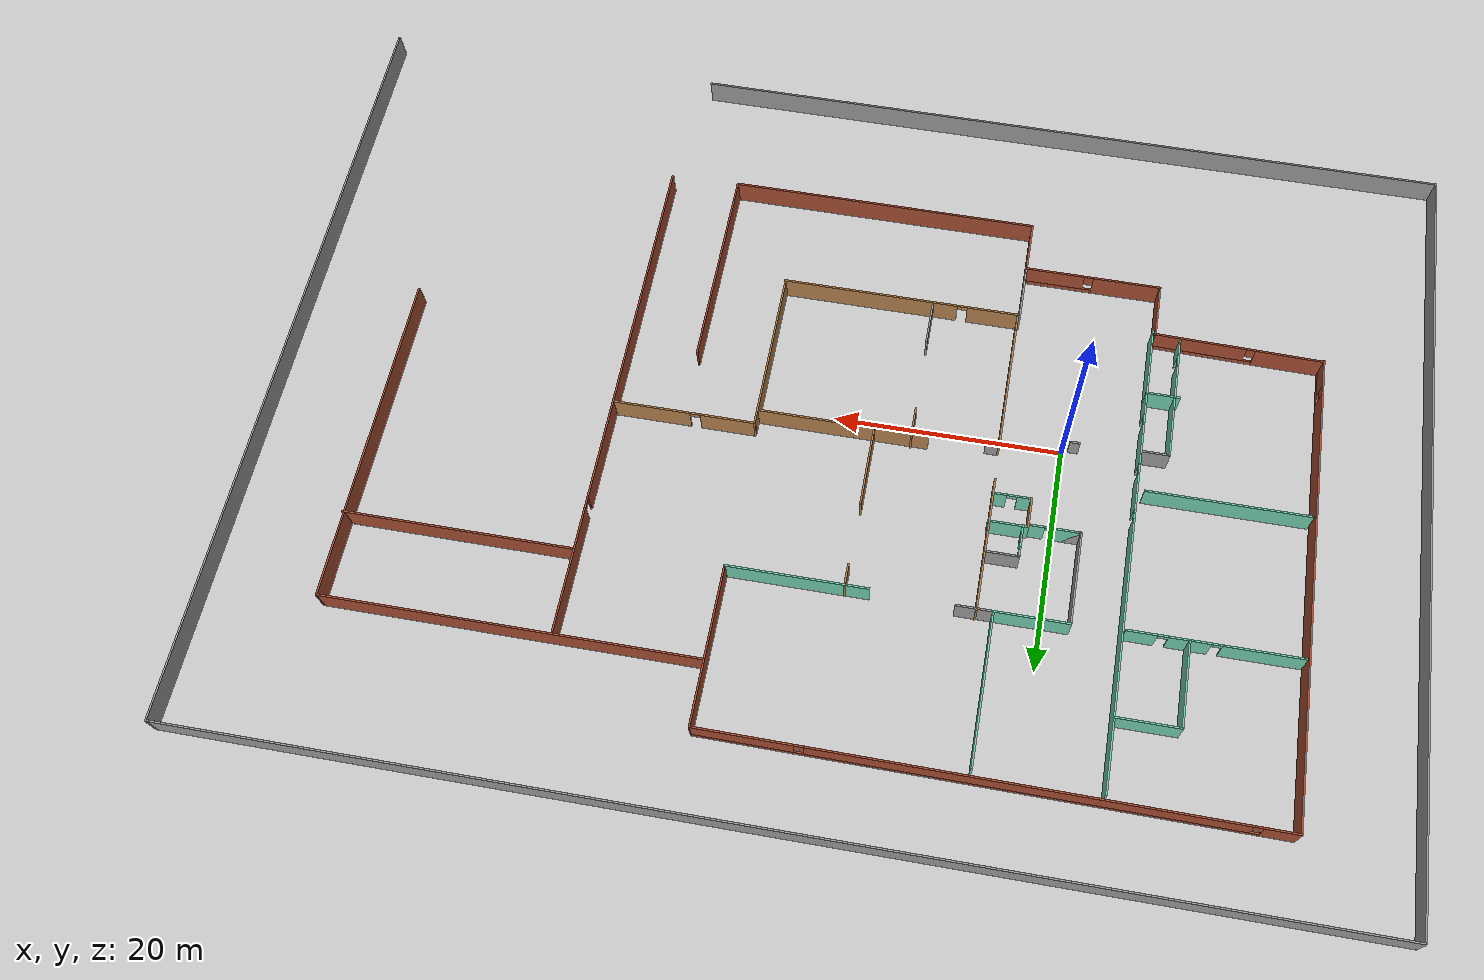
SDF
<sdf version="1.7">
 <world name="empty_world">
  <model name="ground_plane">
   <static>1</static>
   <link name="link">
    <collision name="collision">
     <geometry><plane><normal>0 0 1</normal><size>1 1</size></plane></geometry>
    </collision>
    <visual name="visual">
     <geometry><plane><normal>0 0 1</normal><size>100 100</size></plane></geometry>
     <material>
      <ambient>0.8 0.8 0.8 1</ambient>
      <diffuse>0.8 0.8 0.8 1</diffuse>
      <specular>0.8 0.8 0.8 1</specular>
     </material>
    </visual>
   </link>
  </model>
  <model name="house1">
   <pose>18.9218 2.08152 0 0 -0 0</pose>
   <link name="Door_1">
    <collision name="Door_1_Collision">
     <geometry><box><size>0.9 0.17 2</size></box></geometry>
     <pose>0 0 1 0 -0 0</pose>
    </collision>
    <visual name="Door_1_Visual">
     <pose>0 0 1 0 -0 0</pose>
     <geometry><box><size>0.9 0.17 2</size></box></geometry>
     <material>
      <script><uri>file://media/materials/scripts/gazebo.material</uri><name>Gazebo/Grey</name></script>
     </material>
    </visual>
    <pose>30.2713 14.6078 0 0 -0 0</pose>
   </link>
   <link name="Door_2">
    <collision name="Door_2_Collision">
     <geometry><box><size>0.9 0.17 2</size></box></geometry>
     <pose>0 0 1 0 -0 0</pose>
    </collision>
    <visual name="Door_2_Visual">
     <pose>0 0 1 0 -0 0</pose>
     <geometry><box><size>0.9 0.17 2</size></box></geometry>
     <material>
      <script><uri>file://media/materials/scripts/gazebo.material</uri><name>Gazebo/Grey</name></script>
     </material>
    </visual>
    <pose>23.1921 22.0939 0 0 -0 0</pose>
   </link>
   <link name="Door_8">
    <collision name="Door_8_Collision">
     <geometry><box><size>0.9 0.17 2</size></box></geometry>
     <pose>0 0 1 0 -0 0</pose>
    </collision>
    <visual name="Door_8_Visual">
     <pose>0 0 1 0 -0 0</pose>
     <geometry><box><size>0.9 0.17 2</size></box></geometry>
     <material>
      <script><uri>file://media/materials/scripts/gazebo.material</uri><name>Gazebo/Grey</name></script>
     </material>
    </visual>
    <pose>-19.853 -2.39863 0 0 -0 0</pose>
   </link>
   <link name="Wall_0">
    <pose>-40.5454 7.13614 0 0 -0 -1.5708</pose>
    <visual name="Wall_0_Visual_0">
     <pose>-1.72611 0 1.25 0 -0 0</pose>
     <geometry><box><size>38.5478 0.15 2.5</size></box></geometry>
     <material>
      <script><uri>file://media/materials/scripts/gazebo.material</uri><name>Gazebo/Bricks</name></script>
      <ambient>1 1 1 1</ambient>
     </material>
     <meta><layer>0</layer></meta>
    </visual>
    <collision name="Wall_0_Collision_0">
     <geometry><box><size>38.5478 0.15 2.5</size></box></geometry>
     <pose>-1.72611 0 1.25 0 -0 0</pose>
    </collision>
    <visual name="Wall_0_Visual_1">
     <pose>19.2739 0 0.25 0 -0 0</pose>
     <geometry><box><size>3.45222 0.15 0.5</size></box></geometry>
     <material>
      <script><uri>file://media/materials/scripts/gazebo.material</uri><name>Gazebo/Bricks</name></script>
      <ambient>1 1 1 1</ambient>
     </material>
     <meta><layer>0</layer></meta>
    </visual>
    <collision name="Wall_0_Collision_1">
     <geometry><box><size>3.45222 0.15 0.5</size></box></geometry>
     <pose>19.2739 0 0.25 0 -0 0</pose>
    </collision>
    <visual name="Wall_0_Visual_2">
     <pose>19.6739 0 1.5 0 -0 0</pose>
     <geometry><box><size>2.65222 0.15 2</size></box></geometry>
     <material>
      <script><uri>file://media/materials/scripts/gazebo.material</uri><name>Gazebo/Bricks</name></script>
      <ambient>1 1 1 1</ambient>
     </material>
     <meta><layer>0</layer></meta>
    </visual>
    <collision name="Wall_0_Collision_2">
     <geometry><box><size>2.65222 0.15 2</size></box></geometry>
     <pose>19.6739 0 1.5 0 -0 0</pose>
    </collision>
    <visual name="Wall_0_Visual_3">
     <pose>17.9478 0 1.9 0 -0 0</pose>
     <geometry><box><size>0.8 0.15 1.2</size></box></geometry>
     <material>
      <script><uri>file://media/materials/scripts/gazebo.material</uri><name>Gazebo/Bricks</name></script>
      <ambient>1 1 1 1</ambient>
     </material>
     <meta><layer>0</layer></meta>
    </visual>
    <collision name="Wall_0_Collision_3">
     <geometry><box><size>0.8 0.15 1.2</size></box></geometry>
     <pose>17.9478 0 1.9 0 -0 0</pose>
    </collision>
   </link>
   <link name="Wall_1">
    <pose>-33.1204 -13.8596 0 0 -0 -0.019057</pose>
    <visual name="Wall_1_Visual_0">
     <pose>-4.47768 0 1.25 0 -0 0</pose>
     <geometry><box><size>6.04734 0.15 2.5</size></box></geometry>
     <material>
      <script><uri>file://media/materials/scripts/gazebo.material</uri><name>Gazebo/Bricks</name></script>
      <ambient>1 1 1 1</ambient>
     </material>
     <meta><layer>0</layer></meta>
    </visual>
    <collision name="Wall_1_Collision_0">
     <geometry><box><size>6.04734 0.15 2.5</size></box></geometry>
     <pose>-4.47768 0 1.25 0 -0 0</pose>
    </collision>
    <visual name="Wall_1_Visual_1">
     <pose>3.02367 0 0.25 0 -0 0</pose>
     <geometry><box><size>8.95535 0.15 0.5</size></box></geometry>
     <material>
      <script><uri>file://media/materials/scripts/gazebo.material</uri><name>Gazebo/Bricks</name></script>
      <ambient>1 1 1 1</ambient>
     </material>
     <meta><layer>0</layer></meta>
    </visual>
    <collision name="Wall_1_Collision_1">
     <geometry><box><size>8.95535 0.15 0.5</size></box></geometry>
     <pose>3.02367 0 0.25 0 -0 0</pose>
    </collision>
    <visual name="Wall_1_Visual_2">
     <pose>3.42367 0 1.5 0 -0 0</pose>
     <geometry><box><size>8.15535 0.15 2</size></box></geometry>
     <material>
      <script><uri>file://media/materials/scripts/gazebo.material</uri><name>Gazebo/Bricks</name></script>
      <ambient>1 1 1 1</ambient>
     </material>
     <meta><layer>0</layer></meta>
    </visual>
    <collision name="Wall_1_Collision_2">
     <geometry><box><size>8.15535 0.15 2</size></box></geometry>
     <pose>3.42367 0 1.5 0 -0 0</pose>
    </collision>
    <visual name="Wall_1_Visual_3">
     <pose>-1.05401 0 1.9 0 -0 0</pose>
     <geometry><box><size>0.8 0.15 1.2</size></box></geometry>
     <material>
      <script><uri>file://media/materials/scripts/gazebo.material</uri><name>Gazebo/Bricks</name></script>
      <ambient>1 1 1 1</ambient>
     </material>
     <meta><layer>0</layer></meta>
    </visual>
    <collision name="Wall_1_Collision_3">
     <geometry><box><size>0.8 0.15 1.2</size></box></geometry>
     <pose>-1.05401 0 1.9 0 -0 0</pose>
    </collision>
   </link>
   <link name="Wall_10">
    <collision name="Wall_10_Collision">
     <geometry><box><size>12.25 0.15 2.5</size></box></geometry>
     <pose>0 0 1.25 0 -0 0</pose>
    </collision>
    <visual name="Wall_10_Visual">
     <pose>0 0 1.25 0 -0 0</pose>
     <geometry><box><size>12.25 0.15 2.5</size></box></geometry>
     <material>
      <script><uri>file://media/materials/scripts/gazebo.material</uri><name>Gazebo/Grey</name></script>
      <ambient>0.435294 0.796078 0.67451 1</ambient>
     </material>
     <meta><layer>0</layer></meta>
    </visual>
    <pose>1.50463 13.9989 0 0 -0 3.14159</pose>
   </link>
   <link name="Wall_12">
    <collision name="Wall_12_Collision">
     <geometry><box><size>32.5 0.15 2.5</size></box></geometry>
     <pose>0 0 1.25 0 -0 0</pose>
    </collision>
    <visual name="Wall_12_Visual">
     <pose>0 0 1.25 0 -0 0</pose>
     <geometry><box><size>32.5 0.15 2.5</size></box></geometry>
     <material>
      <script><uri>file://media/materials/scripts/gazebo.material</uri><name>Gazebo/Bricks</name></script>
      <ambient>1 1 1 1</ambient>
     </material>
     <meta><layer>0</layer></meta>
    </visual>
    <pose>23.8633 22.2145 0 0 -0 0</pose>
   </link>
   <link name="Wall_13">
    <collision name="Wall_13_Collision">
     <geometry><box><size>29.75 0.15 2.5</size></box></geometry>
     <pose>0 0 1.25 0 -0 0</pose>
    </collision>
    <visual name="Wall_13_Visual">
     <pose>0 0 1.25 0 -0 0</pose>
     <geometry><box><size>29.75 0.15 2.5</size></box></geometry>
     <material>
      <script><uri>file://media/materials/scripts/gazebo.material</uri><name>Gazebo/Bricks</name></script>
      <ambient>1 1 1 1</ambient>
     </material>
     <meta><layer>0</layer></meta>
    </visual>
    <pose>40.0383 7.41453 0 0 -0 -1.5708</pose>
   </link>
   <link name="Wall_16">
    <pose>20.1814 -0.581074 0 0 -0 -1.5708</pose>
    <visual name="Wall_16_Visual_0">
     <pose>-17.1195 0 1.25 0 -0 0</pose>
     <geometry><box><size>11.261 0.15 2.5</size></box></geometry>
     <material>
      <script><uri>file://media/materials/scripts/gazebo.material</uri><name>Gazebo/Bricks</name></script>
      <ambient>1 1 1 1</ambient>
     </material>
     <meta><layer>0</layer></meta>
    </visual>
    <collision name="Wall_16_Collision_0">
     <geometry><box><size>11.261 0.15 2.5</size></box></geometry>
     <pose>-17.1195 0 1.25 0 -0 0</pose>
    </collision>
    <visual name="Wall_16_Visual_1">
     <pose>6.0805 0 1.25 0 -0 0</pose>
     <geometry><box><size>33.339 0.15 2.5</size></box></geometry>
     <material>
      <script><uri>file://media/materials/scripts/gazebo.material</uri><name>Gazebo/Bricks</name></script>
      <ambient>1 1 1 1</ambient>
     </material>
     <meta><layer>0</layer></meta>
    </visual>
    <collision name="Wall_16_Collision_1">
     <geometry><box><size>33.339 0.15 2.5</size></box></geometry>
     <pose>6.0805 0 1.25 0 -0 0</pose>
    </collision>
    <visual name="Wall_16_Visual_2">
     <pose>-11.039 0 2.25 0 -0 0</pose>
     <geometry><box><size>0.9 0.15 0.5</size></box></geometry>
     <material>
      <script><uri>file://media/materials/scripts/gazebo.material</uri><name>Gazebo/Bricks</name></script>
      <ambient>1 1 1 1</ambient>
     </material>
     <meta><layer>0</layer></meta>
    </visual>
    <collision name="Wall_16_Collision_2">
     <geometry><box><size>0.9 0.15 0.5</size></box></geometry>
     <pose>-11.039 0 2.25 0 -0 0</pose>
    </collision>
   </link>
   <link name="Wall_19">
    <pose>13.8436 0.693454 0 0 -0 3.14159</pose>
    <visual name="Wall_19_Visual_0">
     <pose>-2.89297 0 1.25 0 -0 0</pose>
     <geometry><box><size>6.71407 0.15 2.5</size></box></geometry>
     <material>
      <script><uri>file://media/materials/scripts/gazebo.material</uri><name>Gazebo/Wood</name></script>
      <ambient>0.435294 0.796078 0.67451 1</ambient>
     </material>
     <meta><layer>0</layer></meta>
    </visual>
    <collision name="Wall_19_Collision_0">
     <geometry><box><size>6.71407 0.15 2.5</size></box></geometry>
     <pose>-2.89297 0 1.25 0 -0 0</pose>
    </collision>
    <visual name="Wall_19_Visual_1">
     <pose>3.80703 0 1.25 0 -0 0</pose>
     <geometry><box><size>4.88593 0.15 2.5</size></box></geometry>
     <material>
      <script><uri>file://media/materials/scripts/gazebo.material</uri><name>Gazebo/Wood</name></script>
      <ambient>0.435294 0.796078 0.67451 1</ambient>
     </material>
     <meta><layer>0</layer></meta>
    </visual>
    <collision name="Wall_19_Collision_1">
     <geometry><box><size>4.88593 0.15 2.5</size></box></geometry>
     <pose>3.80703 0 1.25 0 -0 0</pose>
    </collision>
    <visual name="Wall_19_Visual_2">
     <pose>0.914068 0 2.25 0 -0 0</pose>
     <geometry><box><size>0.9 0.15 0.5</size></box></geometry>
     <material>
      <script><uri>file://media/materials/scripts/gazebo.material</uri><name>Gazebo/Wood</name></script>
      <ambient>0.435294 0.796078 0.67451 1</ambient>
     </material>
     <meta><layer>0</layer></meta>
    </visual>
    <collision name="Wall_19_Collision_2">
     <geometry><box><size>0.9 0.15 0.5</size></box></geometry>
     <pose>0.914068 0 2.25 0 -0 0</pose>
    </collision>
   </link>
   <link name="Wall_2">
    <collision name="Wall_2_Collision">
     <geometry><box><size>5 0.15 2.5</size></box></geometry>
     <pose>0 0 1.25 0 -0 0</pose>
    </collision>
    <visual name="Wall_2_Visual">
     <pose>0 0 1.25 0 -0 0</pose>
     <geometry><box><size>5 0.15 2.5</size></box></geometry>
     <material>
      <script><uri>file://media/materials/scripts/gazebo.material</uri><name>Gazebo/Bricks</name></script>
      <ambient>1 1 1 1</ambient>
     </material>
     <meta><layer>0</layer></meta>
    </visual>
    <pose>-25.6954 -16.4261 0 0 -0 -1.5708</pose>
   </link>
   <link name="Wall_20">
    <collision name="Wall_20_Collision">
     <geometry><box><size>14.7327 0.15 2.5</size></box></geometry>
     <pose>0 0 1.25 0 -0 0</pose>
    </collision>
    <visual name="Wall_20_Visual">
     <pose>0 0 1.25 0 -0 0</pose>
     <geometry><box><size>14.7327 0.15 2.5</size></box></geometry>
     <material>
      <script><uri>file://media/materials/scripts/gazebo.material</uri><name>Gazebo/Wood</name></script>
      <ambient>0.435294 0.796078 0.67451 1</ambient>
     </material>
     <meta><layer>0</layer></meta>
    </visual>
    <pose>7.66864 -6.59786 0 0 -0 -1.5708</pose>
   </link>
   <link name="Wall_21">
    <pose>-2.83483 -13.8892 0 0 -0 3.14159</pose>
    <visual name="Wall_21_Visual_0">
     <pose>-2.74764 0 1.25 0 -0 0</pose>
     <geometry><box><size>15.7547 0.15 2.5</size></box></geometry>
     <material>
      <script><uri>file://media/materials/scripts/gazebo.material</uri><name>Gazebo/Wood</name></script>
      <ambient>0.435294 0.796078 0.67451 1</ambient>
     </material>
     <meta><layer>0</layer></meta>
    </visual>
    <collision name="Wall_21_Collision_0">
     <geometry><box><size>15.7547 0.15 2.5</size></box></geometry>
     <pose>-2.74764 0 1.25 0 -0 0</pose>
    </collision>
    <visual name="Wall_21_Visual_1">
     <pose>8.32736 0 1.25 0 -0 0</pose>
     <geometry><box><size>4.59528 0.15 2.5</size></box></geometry>
     <material>
      <script><uri>file://media/materials/scripts/gazebo.material</uri><name>Gazebo/Wood</name></script>
      <ambient>0.435294 0.796078 0.67451 1</ambient>
     </material>
     <meta><layer>0</layer></meta>
    </visual>
    <collision name="Wall_21_Collision_1">
     <geometry><box><size>4.59528 0.15 2.5</size></box></geometry>
     <pose>8.32736 0 1.25 0 -0 0</pose>
    </collision>
    <visual name="Wall_21_Visual_2">
     <pose>5.57972 0 2.25 0 -0 0</pose>
     <geometry><box><size>0.9 0.15 0.5</size></box></geometry>
     <material>
      <script><uri>file://media/materials/scripts/gazebo.material</uri><name>Gazebo/Wood</name></script>
      <ambient>0.435294 0.796078 0.67451 1</ambient>
     </material>
     <meta><layer>0</layer></meta>
    </visual>
    <collision name="Wall_21_Collision_2">
     <geometry><box><size>0.9 0.15 0.5</size></box></geometry>
     <pose>5.57972 0 2.25 0 -0 0</pose>
    </collision>
   </link>
   <link name="Wall_22">
    <collision name="Wall_22_Collision">
     <geometry><box><size>12.9827 0.15 2.5</size></box></geometry>
     <pose>0 0 1.25 0 -0 0</pose>
    </collision>
    <visual name="Wall_22_Visual">
     <pose>0 0 1.25 0 -0 0</pose>
     <geometry><box><size>12.9827 0.15 2.5</size></box></geometry>
     <material>
      <script><uri>file://media/materials/scripts/gazebo.material</uri><name>Gazebo/Wood</name></script>
      <ambient>0.435294 0.796078 0.67451 1</ambient>
     </material>
     <meta><layer>0</layer></meta>
    </visual>
    <pose>-13.4314 -7.47286 0 0 -0 1.5708</pose>
   </link>
   <link name="Wall_23">
    <collision name="Wall_23_Collision">
     <geometry><box><size>1.25 0.15 2.5</size></box></geometry>
     <pose>0 0 1.25 0 -0 0</pose>
    </collision>
    <visual name="Wall_23_Visual">
     <pose>0 0 1.25 0 -0 0</pose>
     <geometry><box><size>1.25 0.15 2.5</size></box></geometry>
     <material>
      <script><uri>file://media/materials/scripts/gazebo.material</uri><name>Gazebo/Grey</name></script>
      <ambient>1 1 1 1</ambient>
     </material>
     <meta><layer>0</layer></meta>
    </visual>
    <pose>-12.8814 -1.05655 0 0 -0 0</pose>
   </link>
   <link name="Wall_25">
    <collision name="Wall_25_Collision">
     <geometry><box><size>15 0.15 2.5</size></box></geometry>
     <pose>0 0 1.25 0 -0 0</pose>
    </collision>
    <visual name="Wall_25_Visual">
     <pose>0 0 1.25 0 -0 0</pose>
     <geometry><box><size>15 0.15 2.5</size></box></geometry>
     <material>
      <script><uri>file://media/materials/scripts/gazebo.material</uri><name>Gazebo/Wood</name></script>
      <ambient>0.435294 0.796078 0.67451 1</ambient>
     </material>
     <meta><layer>0</layer></meta>
    </visual>
    <pose>0.143939 -0.608476 0 0 -0 3.14159</pose>
   </link>
   <link name="Wall_27">
    <collision name="Wall_27_Collision">
     <geometry><box><size>7.25 0.15 2.5</size></box></geometry>
     <pose>0 0 1.25 0 -0 0</pose>
    </collision>
    <visual name="Wall_27_Visual">
     <pose>0 0 1.25 0 -0 0</pose>
     <geometry><box><size>7.25 0.15 2.5</size></box></geometry>
     <material>
      <script><uri>file://media/materials/scripts/gazebo.material</uri><name>Gazebo/Wood</name></script>
      <ambient>0.435294 0.796078 0.67451 1</ambient>
     </material>
     <meta><layer>0</layer></meta>
    </visual>
    <pose>-2.60239 3.0229 0 0 -0 1.5708</pose>
   </link>
   <link name="Wall_3">
    <pose>-19.6454 -18.8511 0 0 -0 0</pose>
    <visual name="Wall_3_Visual_0">
     <pose>-3.08149 0 1.25 0 -0 0</pose>
     <geometry><box><size>6.08701 0.15 2.5</size></box></geometry>
     <material>
      <script><uri>file://media/materials/scripts/gazebo.material</uri><name>Gazebo/Bricks</name></script>
      <ambient>1 1 1 1</ambient>
     </material>
     <meta><layer>0</layer></meta>
    </visual>
    <collision name="Wall_3_Collision_0">
     <geometry><box><size>6.08701 0.15 2.5</size></box></geometry>
     <pose>-3.08149 0 1.25 0 -0 0</pose>
    </collision>
    <visual name="Wall_3_Visual_1">
     <pose>3.04351 0 0.25 0 -0 0</pose>
     <geometry><box><size>6.16299 0.15 0.5</size></box></geometry>
     <material>
      <script><uri>file://media/materials/scripts/gazebo.material</uri><name>Gazebo/Bricks</name></script>
      <ambient>1 1 1 1</ambient>
     </material>
     <meta><layer>0</layer></meta>
    </visual>
    <collision name="Wall_3_Collision_1">
     <geometry><box><size>6.16299 0.15 0.5</size></box></geometry>
     <pose>3.04351 0 0.25 0 -0 0</pose>
    </collision>
    <visual name="Wall_3_Visual_2">
     <pose>3.44351 0 1.5 0 -0 0</pose>
     <geometry><box><size>5.36299 0.15 2</size></box></geometry>
     <material>
      <script><uri>file://media/materials/scripts/gazebo.material</uri><name>Gazebo/Bricks</name></script>
      <ambient>1 1 1 1</ambient>
     </material>
     <meta><layer>0</layer></meta>
    </visual>
    <collision name="Wall_3_Collision_2">
     <geometry><box><size>5.36299 0.15 2</size></box></geometry>
     <pose>3.44351 0 1.5 0 -0 0</pose>
    </collision>
    <visual name="Wall_3_Visual_3">
     <pose>0.362009 0 1.9 0 -0 0</pose>
     <geometry><box><size>0.8 0.15 1.2</size></box></geometry>
     <material>
      <script><uri>file://media/materials/scripts/gazebo.material</uri><name>Gazebo/Bricks</name></script>
      <ambient>1 1 1 1</ambient>
     </material>
     <meta><layer>0</layer></meta>
    </visual>
    <collision name="Wall_3_Collision_3">
     <geometry><box><size>0.8 0.15 1.2</size></box></geometry>
     <pose>0.362009 0 1.9 0 -0 0</pose>
    </collision>
   </link>
   <link name="Wall_30">
    <collision name="Wall_30_Collision">
     <geometry><box><size>2 0.15 2.5</size></box></geometry>
     <pose>0 0 1.25 0 -0 0</pose>
    </collision>
    <visual name="Wall_30_Visual">
     <pose>0 0 1.25 0 -0 0</pose>
     <geometry><box><size>2 0.15 2.5</size></box></geometry>
     <material>
      <script><uri>file://media/materials/scripts/gazebo.material</uri><name>Gazebo/Wood</name></script>
      <ambient>0.435294 0.796078 0.67451 1</ambient>
     </material>
     <meta><layer>0</layer></meta>
    </visual>
    <pose>-2.52102 13.1132 0 0 -0 -1.5708</pose>
   </link>
   <link name="Wall_32">
    <collision name="Wall_32_Collision">
     <geometry><box><size>13.25 0.15 2.5</size></box></geometry>
     <pose>0 0 1.25 0 -0 0</pose>
    </collision>
    <visual name="Wall_32_Visual">
     <pose>0 0 1.25 0 -0 0</pose>
     <geometry><box><size>13.25 0.15 2.5</size></box></geometry>
     <material>
      <script><uri>file://media/materials/scripts/gazebo.material</uri><name>Gazebo/Grey</name></script>
      <ambient>0.435294 0.796078 0.67451 1</ambient>
     </material>
     <meta><layer>0</layer></meta>
    </visual>
    <pose>-14.8894 20.7516 0 0 -0 -1.5708</pose>
   </link>
   <link name="Wall_33">
    <collision name="Wall_33_Collision">
     <geometry><box><size>6.5 0.15 2.5</size></box></geometry>
     <pose>0 0 1.25 0 -0 0</pose>
    </collision>
    <visual name="Wall_33_Visual">
     <pose>0 0 1.25 0 -0 0</pose>
     <geometry><box><size>6.5 0.15 2.5</size></box></geometry>
     <material>
      <script><uri>file://media/materials/scripts/gazebo.material</uri><name>Gazebo/Grey</name></script>
      <ambient>0.435294 0.796078 0.67451 1</ambient>
     </material>
     <meta><layer>0</layer></meta>
    </visual>
    <pose>-18.0644 14.2016 0 0 -0 3.14159</pose>
   </link>
   <link name="Wall_34">
    <collision name="Wall_34_Collision">
     <geometry><box><size>8.25 0.15 2.5</size></box></geometry>
     <pose>0 0 1.25 0 -0 0</pose>
    </collision>
    <visual name="Wall_34_Visual">
     <pose>0 0 1.25 0 -0 0</pose>
     <geometry><box><size>8.25 0.15 2.5</size></box></geometry>
     <material>
      <script><uri>file://media/materials/scripts/gazebo.material</uri><name>Gazebo/Grey</name></script>
      <ambient>1 1 1 1</ambient>
     </material>
     <meta><layer>0</layer></meta>
    </visual>
    <pose>-21.2394 10.1516 0 0 -0 -1.5708</pose>
   </link>
   <link name="Wall_35">
    <collision name="Wall_35_Collision">
     <geometry><box><size>1.5 0.15 2.5</size></box></geometry>
     <pose>0 0 1.25 0 -0 0</pose>
    </collision>
    <visual name="Wall_35_Visual">
     <pose>0 0 1.25 0 -0 0</pose>
     <geometry><box><size>1.5 0.15 2.5</size></box></geometry>
     <material>
      <script><uri>file://media/materials/scripts/gazebo.material</uri><name>Gazebo/Grey</name></script>
      <ambient>1 1 1 1</ambient>
     </material>
     <meta><layer>0</layer></meta>
    </visual>
    <pose>-20.5644 6.10165 0 0 -0 0</pose>
   </link>
   <link name="Wall_38">
    <collision name="Wall_38_Collision">
     <geometry><box><size>3.25 0.15 2.5</size></box></geometry>
     <pose>0 0 1.25 0 -0 0</pose>
    </collision>
    <visual name="Wall_38_Visual">
     <pose>0 0 1.25 0 -0 0</pose>
     <geometry><box><size>3.25 0.15 2.5</size></box></geometry>
     <material>
      <script><uri>file://media/materials/scripts/gazebo.material</uri><name>Gazebo/Grey</name></script>
      <ambient>1 1 1 1</ambient>
     </material>
     <meta><layer>0</layer></meta>
    </visual>
    <pose>-13.3394 14.2016 0 0 -0 0</pose>
   </link>
   <link name="Wall_4">
    <collision name="Wall_4_Collision">
     <geometry><box><size>4.75 0.15 2.5</size></box></geometry>
     <pose>0 0 1.25 0 -0 0</pose>
    </collision>
    <visual name="Wall_4_Visual">
     <pose>0 0 1.25 0 -0 0</pose>
     <geometry><box><size>4.75 0.15 2.5</size></box></geometry>
     <material>
      <script><uri>file://media/materials/scripts/gazebo.material</uri><name>Gazebo/Bricks</name></script>
      <ambient>1 1 1 1</ambient>
     </material>
     <meta><layer>0</layer></meta>
    </visual>
    <pose>-13.5954 -21.1511 0 0 -0 -1.5708</pose>
   </link>
   <link name="Wall_40">
    <collision name="Wall_40_Collision">
     <geometry><box><size>12 0.15 2.5</size></box></geometry>
     <pose>0 0 1.25 0 -0 0</pose>
    </collision>
    <visual name="Wall_40_Visual">
     <pose>0 0 1.25 0 -0 0</pose>
     <geometry><box><size>12 0.15 2.5</size></box></geometry>
     <material>
      <script><uri>file://media/materials/scripts/gazebo.material</uri><name>Gazebo/Wood</name></script>
      <ambient>0.435294 0.796078 0.67451 1</ambient>
     </material>
     <meta><layer>0</layer></meta>
    </visual>
    <pose>-13.5061 8.35735 0 0 -0 -1.5708</pose>
   </link>
   <link name="Wall_42">
    <collision name="Wall_42_Collision">
     <geometry><box><size>3 0.15 2.5</size></box></geometry>
     <pose>0 0 1.25 0 -0 0</pose>
    </collision>
    <visual name="Wall_42_Visual">
     <pose>0 0 1.25 0 -0 0</pose>
     <geometry><box><size>3 0.15 2.5</size></box></geometry>
     <material>
      <script><uri>file://media/materials/scripts/gazebo.material</uri><name>Gazebo/Grey</name></script>
      <ambient>1 1 1 1</ambient>
     </material>
     <meta><layer>0</layer></meta>
    </visual>
    <pose>-14.9311 9.07463 0 0 -0 3.14159</pose>
   </link>
   <link name="Wall_43">
    <pose>-16.356 7.64963 0 0 -0 -1.5708</pose>
    <visual name="Wall_43_Visual_0">
     <pose>-1.04184 0 1.25 0 -0 0</pose>
     <geometry><box><size>0.916318 0.15 2.5</size></box></geometry>
     <material>
      <script><uri>file://media/materials/scripts/gazebo.material</uri><name>Gazebo/Grey</name></script>
      <ambient>0.435294 0.796078 0.67451 1</ambient>
     </material>
     <meta><layer>0</layer></meta>
    </visual>
    <collision name="Wall_43_Collision_0">
     <geometry><box><size>0.916318 0.15 2.5</size></box></geometry>
     <pose>-1.04184 0 1.25 0 -0 0</pose>
    </collision>
    <visual name="Wall_43_Visual_1">
     <pose>0.908159 0 1.25 0 -0 0</pose>
     <geometry><box><size>1.18368 0.15 2.5</size></box></geometry>
     <material>
      <script><uri>file://media/materials/scripts/gazebo.material</uri><name>Gazebo/Grey</name></script>
      <ambient>0.435294 0.796078 0.67451 1</ambient>
     </material>
     <meta><layer>0</layer></meta>
    </visual>
    <collision name="Wall_43_Collision_1">
     <geometry><box><size>1.18368 0.15 2.5</size></box></geometry>
     <pose>0.908159 0 1.25 0 -0 0</pose>
    </collision>
    <visual name="Wall_43_Visual_2">
     <pose>-0.133682 0 2.25 0 -0 0</pose>
     <geometry><box><size>0.9 0.15 0.5</size></box></geometry>
     <material>
      <script><uri>file://media/materials/scripts/gazebo.material</uri><name>Gazebo/Grey</name></script>
      <ambient>0.435294 0.796078 0.67451 1</ambient>
     </material>
     <meta><layer>0</layer></meta>
    </visual>
    <collision name="Wall_43_Collision_2">
     <geometry><box><size>0.9 0.15 0.5</size></box></geometry>
     <pose>-0.133682 0 2.25 0 -0 0</pose>
    </collision>
   </link>
   <link name="Wall_45">
    <collision name="Wall_45_Collision">
     <geometry><box><size>3.5 0.15 2.5</size></box></geometry>
     <pose>0 0 1.25 0 -0 0</pose>
    </collision>
    <visual name="Wall_45_Visual">
     <pose>0 0 1.25 0 -0 0</pose>
     <geometry><box><size>3.5 0.15 2.5</size></box></geometry>
     <material>
      <script><uri>file://media/materials/scripts/gazebo.material</uri><name>Gazebo/Grey</name></script>
      <ambient>0.435294 0.796078 0.67451 1</ambient>
     </material>
     <meta><layer>0</layer></meta>
    </visual>
    <pose>-15.0997 6.30803 0 0 -0 3.14159</pose>
   </link>
   <link name="Wall_46">
    <collision name="Wall_46_Collision">
     <geometry><box><size>2.75 0.15 2.5</size></box></geometry>
     <pose>0 0 1.25 0 -0 0</pose>
    </collision>
    <visual name="Wall_46_Visual">
     <pose>0 0 1.25 0 -0 0</pose>
     <geometry><box><size>2.75 0.15 2.5</size></box></geometry>
     <material>
      <script><uri>file://media/materials/scripts/gazebo.material</uri><name>Gazebo/Wood</name></script>
      <ambient>0.435294 0.796078 0.67451 1</ambient>
     </material>
     <meta><layer>0</layer></meta>
    </visual>
    <pose>-16.7747 5.00803 0 0 -0 -1.5708</pose>
   </link>
   <link name="Wall_47">
    <pose>-15.2247 3.70803 0 0 -0 0</pose>
    <visual name="Wall_47_Visual_0">
     <pose>-0.975519 0 1.25 0 -0 0</pose>
     <geometry><box><size>1.29896 0.15 2.5</size></box></geometry>
     <material>
      <script><uri>file://media/materials/scripts/gazebo.material</uri><name>Gazebo/Grey</name></script>
      <ambient>0.435294 0.796078 0.67451 1</ambient>
     </material>
     <meta><layer>0</layer></meta>
    </visual>
    <collision name="Wall_47_Collision_0">
     <geometry><box><size>1.29896 0.15 2.5</size></box></geometry>
     <pose>-0.975519 0 1.25 0 -0 0</pose>
    </collision>
    <visual name="Wall_47_Visual_1">
     <pose>1.09948 0 1.25 0 -0 0</pose>
     <geometry><box><size>1.05104 0.15 2.5</size></box></geometry>
     <material>
      <script><uri>file://media/materials/scripts/gazebo.material</uri><name>Gazebo/Grey</name></script>
      <ambient>0.435294 0.796078 0.67451 1</ambient>
     </material>
     <meta><layer>0</layer></meta>
    </visual>
    <collision name="Wall_47_Collision_1">
     <geometry><box><size>1.05104 0.15 2.5</size></box></geometry>
     <pose>1.09948 0 1.25 0 -0 0</pose>
    </collision>
    <visual name="Wall_47_Visual_2">
     <pose>0.123962 0 2.25 0 -0 0</pose>
     <geometry><box><size>0.9 0.15 0.5</size></box></geometry>
     <material>
      <script><uri>file://media/materials/scripts/gazebo.material</uri><name>Gazebo/Grey</name></script>
      <ambient>0.435294 0.796078 0.67451 1</ambient>
     </material>
     <meta><layer>0</layer></meta>
    </visual>
    <collision name="Wall_47_Collision_2">
     <geometry><box><size>0.9 0.15 0.5</size></box></geometry>
     <pose>0.123962 0 2.25 0 -0 0</pose>
    </collision>
   </link>
   <link name="Wall_49">
    <pose>-25.4675 6.70213 0 0 -0 -1.5708</pose>
    <visual name="Wall_49_Visual_0">
     <pose>-9.18533 0 1.25 0 -0 0</pose>
     <geometry><box><size>23.6293 0.15 2.5</size></box></geometry>
     <material>
      <script><uri>file://media/materials/scripts/gazebo.material</uri><name>Gazebo/Grey</name></script>
      <ambient>0.435294 0.796078 0.67451 1</ambient>
     </material>
     <meta><layer>0</layer></meta>
    </visual>
    <collision name="Wall_49_Collision_0">
     <geometry><box><size>23.6293 0.15 2.5</size></box></geometry>
     <pose>-9.18533 0 1.25 0 -0 0</pose>
    </collision>
    <visual name="Wall_49_Visual_1">
     <pose>5.23565 0 1.25 0 -0 0</pose>
     <geometry><box><size>3.41264 0.15 2.5</size></box></geometry>
     <material>
      <script><uri>file://media/materials/scripts/gazebo.material</uri><name>Gazebo/Grey</name></script>
      <ambient>0.435294 0.796078 0.67451 1</ambient>
     </material>
     <meta><layer>0</layer></meta>
    </visual>
    <collision name="Wall_49_Collision_1">
     <geometry><box><size>3.41264 0.15 2.5</size></box></geometry>
     <pose>5.23565 0 1.25 0 -0 0</pose>
    </collision>
    <visual name="Wall_49_Visual_2">
     <pose>9.79241 0 1.25 0 -0 0</pose>
     <geometry><box><size>3.90087 0.15 2.5</size></box></geometry>
     <material>
      <script><uri>file://media/materials/scripts/gazebo.material</uri><name>Gazebo/Grey</name></script>
      <ambient>0.435294 0.796078 0.67451 1</ambient>
     </material>
     <meta><layer>0</layer></meta>
    </visual>
    <collision name="Wall_49_Collision_2">
     <geometry><box><size>3.90087 0.15 2.5</size></box></geometry>
     <pose>9.79241 0 1.25 0 -0 0</pose>
    </collision>
    <visual name="Wall_49_Visual_3">
     <pose>16.8214 0 1.25 0 -0 0</pose>
     <geometry><box><size>8.35716 0.15 2.5</size></box></geometry>
     <material>
      <script><uri>file://media/materials/scripts/gazebo.material</uri><name>Gazebo/Grey</name></script>
      <ambient>0.435294 0.796078 0.67451 1</ambient>
     </material>
     <meta><layer>0</layer></meta>
    </visual>
    <collision name="Wall_49_Collision_3">
     <geometry><box><size>8.35716 0.15 2.5</size></box></geometry>
     <pose>16.8214 0 1.25 0 -0 0</pose>
    </collision>
    <visual name="Wall_49_Visual_4">
     <pose>3.07933 0 2.25 0 -0 0</pose>
     <geometry><box><size>0.9 0.15 0.5</size></box></geometry>
     <material>
      <script><uri>file://media/materials/scripts/gazebo.material</uri><name>Gazebo/Grey</name></script>
      <ambient>0.435294 0.796078 0.67451 1</ambient>
     </material>
     <meta><layer>0</layer></meta>
    </visual>
    <collision name="Wall_49_Collision_4">
     <geometry><box><size>0.9 0.15 0.5</size></box></geometry>
     <pose>3.07933 0 2.25 0 -0 0</pose>
    </collision>
    <visual name="Wall_49_Visual_5">
     <pose>7.39197 0 2.25 0 -0 0</pose>
     <geometry><box><size>0.9 0.15 0.5</size></box></geometry>
     <material>
      <script><uri>file://media/materials/scripts/gazebo.material</uri><name>Gazebo/Grey</name></script>
      <ambient>0.435294 0.796078 0.67451 1</ambient>
     </material>
     <meta><layer>0</layer></meta>
    </visual>
    <collision name="Wall_49_Collision_5">
     <geometry><box><size>0.9 0.15 0.5</size></box></geometry>
     <pose>7.39197 0 2.25 0 -0 0</pose>
    </collision>
    <visual name="Wall_49_Visual_6">
     <pose>12.1928 0 2.25 0 -0 0</pose>
     <geometry><box><size>0.9 0.15 0.5</size></box></geometry>
     <material>
      <script><uri>file://media/materials/scripts/gazebo.material</uri><name>Gazebo/Grey</name></script>
      <ambient>0.435294 0.796078 0.67451 1</ambient>
     </material>
     <meta><layer>0</layer></meta>
    </visual>
    <collision name="Wall_49_Collision_6">
     <geometry><box><size>0.9 0.15 0.5</size></box></geometry>
     <pose>12.1928 0 2.25 0 -0 0</pose>
    </collision>
   </link>
   <link name="Wall_5">
    <collision name="Wall_5_Collision">
     <geometry><box><size>27.75 0.15 2.5</size></box></geometry>
     <pose>0 0 1.25 0 -0 0</pose>
    </collision>
    <visual name="Wall_5_Visual">
     <pose>0 0 1.25 0 -0 0</pose>
     <geometry><box><size>27.75 0.15 2.5</size></box></geometry>
     <material>
      <script><uri>file://media/materials/scripts/gazebo.material</uri><name>Gazebo/Bricks</name></script>
      <ambient>1 1 1 1</ambient>
     </material>
     <meta><layer>0</layer></meta>
    </visual>
    <pose>0.204628 -23.4511 0 0 -0 0</pose>
   </link>
   <link name="Wall_51">
    <collision name="Wall_51_Collision">
     <geometry><box><size>2.5 0.15 2.5</size></box></geometry>
     <pose>0 0 1.25 0 -0 0</pose>
    </collision>
    <visual name="Wall_51_Visual">
     <pose>0 0 1.25 0 -0 0</pose>
     <geometry><box><size>2.5 0.15 2.5</size></box></geometry>
     <material>
      <script><uri>file://media/materials/scripts/gazebo.material</uri><name>Gazebo/Grey</name></script>
      <ambient>1 1 1 1</ambient>
     </material>
     <meta><layer>0</layer></meta>
    </visual>
    <pose>-26.7239 -2.31726 0 0 -0 3.14159</pose>
   </link>
   <link name="Wall_52">
    <pose>-27.8989 -7.99226 0 0 -0 -1.5708</pose>
    <visual name="Wall_52_Visual_0">
     <pose>-1.218 0 1.25 0 -0 0</pose>
     <geometry><box><size>9.06399 0.15 2.5</size></box></geometry>
     <material>
      <script><uri>file://media/materials/scripts/gazebo.material</uri><name>Gazebo/Grey</name></script>
      <ambient>0.435294 0.796078 0.67451 1</ambient>
     </material>
     <meta><layer>0</layer></meta>
    </visual>
    <collision name="Wall_52_Collision_0">
     <geometry><box><size>9.06399 0.15 2.5</size></box></geometry>
     <pose>-1.218 0 1.25 0 -0 0</pose>
    </collision>
    <visual name="Wall_52_Visual_1">
     <pose>4.982 0 1.25 0 -0 0</pose>
     <geometry><box><size>1.53601 0.15 2.5</size></box></geometry>
     <material>
      <script><uri>file://media/materials/scripts/gazebo.material</uri><name>Gazebo/Grey</name></script>
      <ambient>0.435294 0.796078 0.67451 1</ambient>
     </material>
     <meta><layer>0</layer></meta>
    </visual>
    <collision name="Wall_52_Collision_1">
     <geometry><box><size>1.53601 0.15 2.5</size></box></geometry>
     <pose>4.982 0 1.25 0 -0 0</pose>
    </collision>
    <visual name="Wall_52_Visual_2">
     <pose>3.76399 0 2.25 0 -0 0</pose>
     <geometry><box><size>0.9 0.15 0.5</size></box></geometry>
     <material>
      <script><uri>file://media/materials/scripts/gazebo.material</uri><name>Gazebo/Grey</name></script>
      <ambient>0.435294 0.796078 0.67451 1</ambient>
     </material>
     <meta><layer>0</layer></meta>
    </visual>
    <collision name="Wall_52_Collision_2">
     <geometry><box><size>0.9 0.15 0.5</size></box></geometry>
     <pose>3.76399 0 2.25 0 -0 0</pose>
    </collision>
   </link>
   <link name="Wall_54">
    <collision name="Wall_54_Collision">
     <geometry><box><size>3 0.15 2.5</size></box></geometry>
     <pose>0 0 1.25 0 -0 0</pose>
    </collision>
    <visual name="Wall_54_Visual">
     <pose>0 0 1.25 0 -0 0</pose>
     <geometry><box><size>3 0.15 2.5</size></box></geometry>
     <material>
      <script><uri>file://media/materials/scripts/gazebo.material</uri><name>Gazebo/Grey</name></script>
      <ambient>0.435294 0.796078 0.67451 1</ambient>
     </material>
     <meta><layer>0</layer></meta>
    </visual>
    <pose>-26.8905 -8.0132 0 0 -0 0</pose>
   </link>
   <link name="Wall_56">
    <collision name="Wall_56_Collision">
     <geometry><box><size>14.25 0.15 2.5</size></box></geometry>
     <pose>0 0 1.25 0 -0 0</pose>
    </collision>
    <visual name="Wall_56_Visual">
     <pose>0 0 1.25 0 -0 0</pose>
     <geometry><box><size>14.25 0.15 2.5</size></box></geometry>
     <material>
      <script><uri>file://media/materials/scripts/gazebo.material</uri><name>Gazebo/Grey</name></script>
      <ambient>0.435294 0.796078 0.67451 1</ambient>
     </material>
     <meta><layer>0</layer></meta>
    </visual>
    <pose>-33.227 1.34442 0 0 -0 0</pose>
   </link>
   <link name="Wall_58">
    <pose>-33.0584 13.9569 0 0 -0 0</pose>
    <visual name="Wall_58_Visual_0">
     <pose>-3.94151 0 1.25 0 -0 0</pose>
     <geometry><box><size>6.86699 0.15 2.5</size></box></geometry>
     <material>
      <script><uri>file://media/materials/scripts/gazebo.material</uri><name>Gazebo/Grey</name></script>
      <ambient>0.435294 0.796078 0.67451 1</ambient>
     </material>
     <meta><layer>0</layer></meta>
    </visual>
    <collision name="Wall_58_Collision_0">
     <geometry><box><size>6.86699 0.15 2.5</size></box></geometry>
     <pose>-3.94151 0 1.25 0 -0 0</pose>
    </collision>
    <visual name="Wall_58_Visual_1">
     <pose>2.13899 0 1.25 0 -0 0</pose>
     <geometry><box><size>3.49401 0.15 2.5</size></box></geometry>
     <material>
      <script><uri>file://media/materials/scripts/gazebo.material</uri><name>Gazebo/Grey</name></script>
      <ambient>0.435294 0.796078 0.67451 1</ambient>
     </material>
     <meta><layer>0</layer></meta>
    </visual>
    <collision name="Wall_58_Collision_1">
     <geometry><box><size>3.49401 0.15 2.5</size></box></geometry>
     <pose>2.13899 0 1.25 0 -0 0</pose>
    </collision>
    <visual name="Wall_58_Visual_2">
     <pose>6.0805 0 1.25 0 -0 0</pose>
     <geometry><box><size>2.589 0.15 2.5</size></box></geometry>
     <material>
      <script><uri>file://media/materials/scripts/gazebo.material</uri><name>Gazebo/Grey</name></script>
      <ambient>0.435294 0.796078 0.67451 1</ambient>
     </material>
     <meta><layer>0</layer></meta>
    </visual>
    <collision name="Wall_58_Collision_2">
     <geometry><box><size>2.589 0.15 2.5</size></box></geometry>
     <pose>6.0805 0 1.25 0 -0 0</pose>
    </collision>
    <visual name="Wall_58_Visual_3">
     <pose>-0.058014 0 2.25 0 -0 0</pose>
     <geometry><box><size>0.9 0.15 0.5</size></box></geometry>
     <material>
      <script><uri>file://media/materials/scripts/gazebo.material</uri><name>Gazebo/Grey</name></script>
      <ambient>0.435294 0.796078 0.67451 1</ambient>
     </material>
     <meta><layer>0</layer></meta>
    </visual>
    <collision name="Wall_58_Collision_3">
     <geometry><box><size>0.9 0.15 0.5</size></box></geometry>
     <pose>-0.058014 0 2.25 0 -0 0</pose>
    </collision>
    <visual name="Wall_58_Visual_4">
     <pose>4.336 0 2.25 0 -0 0</pose>
     <geometry><box><size>0.9 0.15 0.5</size></box></geometry>
     <material>
      <script><uri>file://media/materials/scripts/gazebo.material</uri><name>Gazebo/Grey</name></script>
      <ambient>0.435294 0.796078 0.67451 1</ambient>
     </material>
     <meta><layer>0</layer></meta>
    </visual>
    <collision name="Wall_58_Collision_4">
     <geometry><box><size>0.9 0.15 0.5</size></box></geometry>
     <pose>4.336 0 2.25 0 -0 0</pose>
    </collision>
   </link>
   <link name="Wall_6">
    <collision name="Wall_6_Collision">
     <geometry><box><size>18.25 0.15 2.5</size></box></geometry>
     <pose>0 0 1.25 0 -0 0</pose>
    </collision>
    <visual name="Wall_6_Visual">
     <pose>0 0 1.25 0 -0 0</pose>
     <geometry><box><size>18.25 0.15 2.5</size></box></geometry>
     <material>
      <script><uri>file://media/materials/scripts/gazebo.material</uri><name>Gazebo/Bricks</name></script>
      <ambient>1 1 1 1</ambient>
     </material>
     <meta><layer>0</layer></meta>
    </visual>
    <pose>14.0046 -14.4011 0 0 -0 1.5708</pose>
   </link>
   <link name="Wall_60">
    <collision name="Wall_60_Collision">
     <geometry><box><size>5.5 0.15 2.5</size></box></geometry>
     <pose>0 0 1.25 0 -0 0</pose>
    </collision>
    <visual name="Wall_60_Visual">
     <pose>0 0 1.25 0 -0 0</pose>
     <geometry><box><size>5.5 0.15 2.5</size></box></geometry>
     <material>
      <script><uri>file://media/materials/scripts/gazebo.material</uri><name>Gazebo/Grey</name></script>
      <ambient>0.435294 0.796078 0.67451 1</ambient>
     </material>
     <meta><layer>0</layer></meta>
    </visual>
    <pose>-28.2239 21.3616 0 0 -0 3.14159</pose>
   </link>
   <link name="Wall_61">
    <collision name="Wall_61_Collision">
     <geometry><box><size>7.5 0.15 2.5</size></box></geometry>
     <pose>0 0 1.25 0 -0 0</pose>
    </collision>
    <visual name="Wall_61_Visual">
     <pose>0 0 1.25 0 -0 0</pose>
     <geometry><box><size>7.5 0.15 2.5</size></box></geometry>
     <material>
      <script><uri>file://media/materials/scripts/gazebo.material</uri><name>Gazebo/Grey</name></script>
      <ambient>0.435294 0.796078 0.67451 1</ambient>
     </material>
     <meta><layer>0</layer></meta>
    </visual>
    <pose>-30.8989 17.6866 0 0 -0 -1.5708</pose>
   </link>
   <link name="Wall_63">
    <collision name="Wall_63_Collision">
     <geometry><box><size>20 0.15 2.5</size></box></geometry>
     <pose>0 0 1.25 0 -0 0</pose>
    </collision>
    <visual name="Wall_63_Visual">
     <pose>0 0 1.25 0 -0 0</pose>
     <geometry><box><size>20 0.15 2.5</size></box></geometry>
     <material>
      <script><uri>file://media/materials/scripts/gazebo.material</uri><name>Gazebo/Bricks</name></script>
      <ambient>1 1 1 1</ambient>
     </material>
     <meta><layer>0</layer></meta>
    </visual>
    <pose>30.2691 14.6892 0 0 -0 0</pose>
   </link>
   <link name="Wall_65">
    <collision name="Wall_65_Collision">
     <geometry><box><size>4 0.15 2.5</size></box></geometry>
     <pose>0 0 1.25 0 -0 0</pose>
    </collision>
    <visual name="Wall_65_Visual">
     <pose>0 0 1.25 0 -0 0</pose>
     <geometry><box><size>4 0.15 2.5</size></box></geometry>
     <material>
      <script><uri>file://media/materials/scripts/gazebo.material</uri><name>Gazebo/Grey</name></script>
      <ambient>1 1 1 1</ambient>
     </material>
     <meta><layer>0</layer></meta>
    </visual>
    <pose>-5.77584 -11.7841 0 0 -0 1.5708</pose>
   </link>
   <link name="Wall_67">
    <collision name="Wall_67_Collision">
     <geometry><box><size>2.75 0.15 2.5</size></box></geometry>
     <pose>0 0 1.25 0 -0 0</pose>
    </collision>
    <visual name="Wall_67_Visual">
     <pose>0 0 1.25 0 -0 0</pose>
     <geometry><box><size>2.75 0.15 2.5</size></box></geometry>
     <material>
      <script><uri>file://media/materials/scripts/gazebo.material</uri><name>Gazebo/Wood</name></script>
      <ambient>0.435294 0.796078 0.67451 1</ambient>
     </material>
     <meta><layer>0</layer></meta>
    </visual>
    <pose>-5.85721 -1.74573 0 0 -0 -1.5708</pose>
   </link>
   <link name="Wall_69">
    <collision name="Wall_69_Collision">
     <geometry><box><size>5.25 0.15 2.5</size></box></geometry>
     <pose>0 0 1.25 0 -0 0</pose>
    </collision>
    <visual name="Wall_69_Visual">
     <pose>0 0 1.25 0 -0 0</pose>
     <geometry><box><size>5.25 0.15 2.5</size></box></geometry>
     <material>
      <script><uri>file://media/materials/scripts/gazebo.material</uri><name>Gazebo/Grey</name></script>
      <ambient>1 1 1 1</ambient>
     </material>
     <meta><layer>0</layer></meta>
    </visual>
    <pose>-13.5954 -16.3011 0 0 -0 1.5708</pose>
   </link>
   <link name="Wall_74">
    <collision name="Wall_74_Collision">
     <geometry><box><size>8.25 0.15 2.5</size></box></geometry>
     <pose>0 0 1.25 0 -0 0</pose>
    </collision>
    <visual name="Wall_74_Visual">
     <pose>0 0 1.25 0 -0 0</pose>
     <geometry><box><size>8.25 0.15 2.5</size></box></geometry>
     <material>
      <script><uri>file://media/materials/scripts/gazebo.material</uri><name>Gazebo/Grey</name></script>
      <ambient>0.435294 0.796078 0.67451 1</ambient>
     </material>
     <meta><layer>0</layer></meta>
    </visual>
    <pose>-21.2394 10.1516 0 0 -0 -1.5708</pose>
   </link>
   <link name="Wall_76">
    <pose>-19.0644 6.10165 0 0 -0 0</pose>
    <visual name="Wall_76_Visual_0">
     <pose>-1.12816 0 1.25 0 -0 0</pose>
     <geometry><box><size>2.24369 0.15 2.5</size></box></geometry>
     <material>
      <script><uri>file://media/materials/scripts/gazebo.material</uri><name>Gazebo/Grey</name></script>
      <ambient>0.435294 0.796078 0.67451 1</ambient>
     </material>
     <meta><layer>0</layer></meta>
    </visual>
    <collision name="Wall_76_Collision_0">
     <geometry><box><size>2.24369 0.15 2.5</size></box></geometry>
     <pose>-1.12816 0 1.25 0 -0 0</pose>
    </collision>
    <visual name="Wall_76_Visual_1">
     <pose>1.57184 0 1.25 0 -0 0</pose>
     <geometry><box><size>1.35631 0.15 2.5</size></box></geometry>
     <material>
      <script><uri>file://media/materials/scripts/gazebo.material</uri><name>Gazebo/Grey</name></script>
      <ambient>0.435294 0.796078 0.67451 1</ambient>
     </material>
     <meta><layer>0</layer></meta>
    </visual>
    <collision name="Wall_76_Collision_1">
     <geometry><box><size>1.35631 0.15 2.5</size></box></geometry>
     <pose>1.57184 0 1.25 0 -0 0</pose>
    </collision>
    <visual name="Wall_76_Visual_2">
     <pose>0.443689 0 2.25 0 -0 0</pose>
     <geometry><box><size>0.9 0.15 0.5</size></box></geometry>
     <material>
      <script><uri>file://media/materials/scripts/gazebo.material</uri><name>Gazebo/Grey</name></script>
      <ambient>0.435294 0.796078 0.67451 1</ambient>
     </material>
     <meta><layer>0</layer></meta>
    </visual>
    <collision name="Wall_76_Collision_2">
     <geometry><box><size>0.9 0.15 0.5</size></box></geometry>
     <pose>0.443689 0 2.25 0 -0 0</pose>
    </collision>
   </link>
   <link name="Wall_78">
    <collision name="Wall_78_Collision">
     <geometry><box><size>69.25 0.15 2.5</size></box></geometry>
     <pose>0 0 1.25 0 -0 0</pose>
    </collision>
    <visual name="Wall_78_Visual">
     <pose>0 0 1.25 0 -0 0</pose>
     <geometry><box><size>69.25 0.15 2.5</size></box></geometry>
     <material>
      <script><uri>file://media/materials/scripts/gazebo.material</uri><name>Gazebo/Grey</name></script>
      <ambient>1 1 1 1</ambient>
     </material>
     <meta><layer>0</layer></meta>
    </visual>
    <pose>-50.05 0.125 0 0 -0 -1.5708</pose>
   </link>
   <link name="Wall_79">
    <collision name="Wall_79_Collision">
     <geometry><box><size>69 0.15 2.5</size></box></geometry>
     <pose>0 0 1.25 0 -0 0</pose>
    </collision>
    <visual name="Wall_79_Visual">
     <pose>0 0 1.25 0 -0 0</pose>
     <geometry><box><size>69 0.15 2.5</size></box></geometry>
     <material>
      <script><uri>file://media/materials/scripts/gazebo.material</uri><name>Gazebo/Grey</name></script>
      <ambient>0 0 0 1</ambient>
     </material>
     <meta><layer>0</layer></meta>
    </visual>
    <pose>-15.625 -34.425 0 0 -0 0</pose>
   </link>
   <link name="Wall_8">
    <pose>-16.4954 27.9904 0 0 -0 -0.005884</pose>
    <visual name="Wall_8_Visual_0">
     <pose>-22.6888 0 1.25 0 -0 0</pose>
     <geometry><box><size>2.87237 0.15 2.5</size></box></geometry>
     <material>
      <script><uri>file://media/materials/scripts/gazebo.material</uri><name>Gazebo/Bricks</name></script>
      <ambient>1 1 1 1</ambient>
     </material>
     <meta><layer>0</layer></meta>
    </visual>
    <collision name="Wall_8_Collision_0">
     <geometry><box><size>2.87237 0.15 2.5</size></box></geometry>
     <pose>-22.6888 0 1.25 0 -0 0</pose>
    </collision>
    <visual name="Wall_8_Visual_1">
     <pose>1.43619 0 0.25 0 -0 0</pose>
     <geometry><box><size>45.3776 0.15 0.5</size></box></geometry>
     <material>
      <script><uri>file://media/materials/scripts/gazebo.material</uri><name>Gazebo/Bricks</name></script>
      <ambient>1 1 1 1</ambient>
     </material>
     <meta><layer>0</layer></meta>
    </visual>
    <collision name="Wall_8_Collision_1">
     <geometry><box><size>45.3776 0.15 0.5</size></box></geometry>
     <pose>1.43619 0 0.25 0 -0 0</pose>
    </collision>
    <visual name="Wall_8_Visual_2">
     <pose>-2.78544 0 1.5 0 -0 0</pose>
     <geometry><box><size>35.3344 0.15 2</size></box></geometry>
     <material>
      <script><uri>file://media/materials/scripts/gazebo.material</uri><name>Gazebo/Bricks</name></script>
      <ambient>1 1 1 1</ambient>
     </material>
     <meta><layer>0</layer></meta>
    </visual>
    <collision name="Wall_8_Collision_2">
     <geometry><box><size>35.3344 0.15 2</size></box></geometry>
     <pose>-2.78544 0 1.5 0 -0 0</pose>
    </collision>
    <visual name="Wall_8_Visual_3">
     <pose>19.9034 0 1.5 0 -0 0</pose>
     <geometry><box><size>8.44325 0.15 2</size></box></geometry>
     <material>
      <script><uri>file://media/materials/scripts/gazebo.material</uri><name>Gazebo/Bricks</name></script>
      <ambient>1 1 1 1</ambient>
     </material>
     <meta><layer>0</layer></meta>
    </visual>
    <collision name="Wall_8_Collision_3">
     <geometry><box><size>8.44325 0.15 2</size></box></geometry>
     <pose>19.9034 0 1.5 0 -0 0</pose>
    </collision>
    <visual name="Wall_8_Visual_4">
     <pose>-20.8526 0 1.9 0 -0 0</pose>
     <geometry><box><size>0.8 0.15 1.2</size></box></geometry>
     <material>
      <script><uri>file://media/materials/scripts/gazebo.material</uri><name>Gazebo/Bricks</name></script>
      <ambient>1 1 1 1</ambient>
     </material>
     <meta><layer>0</layer></meta>
    </visual>
    <collision name="Wall_8_Collision_4">
     <geometry><box><size>0.8 0.15 1.2</size></box></geometry>
     <pose>-20.8526 0 1.9 0 -0 0</pose>
    </collision>
    <visual name="Wall_8_Visual_5">
     <pose>15.2817 0 1.9 0 -0 0</pose>
     <geometry><box><size>0.8 0.15 1.2</size></box></geometry>
     <material>
      <script><uri>file://media/materials/scripts/gazebo.material</uri><name>Gazebo/Bricks</name></script>
      <ambient>1 1 1 1</ambient>
     </material>
     <meta><layer>0</layer></meta>
    </visual>
    <collision name="Wall_8_Collision_5">
     <geometry><box><size>0.8 0.15 1.2</size></box></geometry>
     <pose>15.2817 0 1.9 0 -0 0</pose>
    </collision>
   </link>
   <link name="Wall_84">
    <collision name="Wall_84_Collision">
     <geometry><box><size>100.25 0.15 2.5</size></box></geometry>
     <pose>0 0 1.25 0 -0 0</pose>
    </collision>
    <visual name="Wall_84_Visual">
     <pose>0 0 1.25 0 -0 0</pose>
     <geometry><box><size>100.25 0.15 2.5</size></box></geometry>
     <material>
      <script><uri>file://media/materials/scripts/gazebo.material</uri><name>Gazebo/Grey</name></script>
      <ambient>0 0 0 1</ambient>
     </material>
     <meta><layer>0</layer></meta>
    </visual>
    <pose>1e-06 34.675 0 0 -0 0</pose>
   </link>
   <link name="Wall_85">
    <collision name="Wall_85_Collision">
     <geometry><box><size>69.5 0.15 2.5</size></box></geometry>
     <pose>0 0 1.25 0 -0 0</pose>
    </collision>
    <visual name="Wall_85_Visual">
     <pose>0 0 1.25 0 -0 0</pose>
     <geometry><box><size>69.5 0.15 2.5</size></box></geometry>
     <material>
      <script><uri>file://media/materials/scripts/gazebo.material</uri><name>Gazebo/Grey</name></script>
      <ambient>0 0 0 1</ambient>
     </material>
     <meta><layer>0</layer></meta>
    </visual>
    <pose>50.05 -0 0 0 -0 -1.5708</pose>
   </link>
   <link name="Wall_9">
    <collision name="Wall_9_Collision">
     <geometry><box><size>14 0.15 2.5</size></box></geometry>
     <pose>0 0 1.25 0 -0 0</pose>
    </collision>
    <visual name="Wall_9_Visual">
     <pose>0 0 1.25 0 -0 0</pose>
     <geometry><box><size>14 0.15 2.5</size></box></geometry>
     <material>
      <script><uri>file://media/materials/scripts/gazebo.material</uri><name>Gazebo/Bricks</name></script>
      <ambient>1 1 1 1</ambient>
     </material>
     <meta><layer>0</layer></meta>
    </visual>
    <pose>7.55463 20.9239 0 0 -0 -1.5708</pose>
   </link>
   <link name="Window_6">
    <collision name="Window_6_Collision">
     <geometry><box><size>0.8 0.17 0.8</size></box></geometry>
     <pose>0 0 0.4 0 -0 0</pose>
    </collision>
    <visual name="Window_6_Visual">
     <pose>0 0 0.4 0 -0 0</pose>
     <geometry><box><size>0.8 0.17 0.8</size></box></geometry>
     <material>
      <script><uri>file://media/materials/scripts/gazebo.material</uri><name>Gazebo/Grey</name></script>
     </material>
    </visual>
    <pose>3.52704 27.7225 0.5 0 -0 0</pose>
   </link>
   <static>1</static>
  </model>
 </world>
</sdf>
